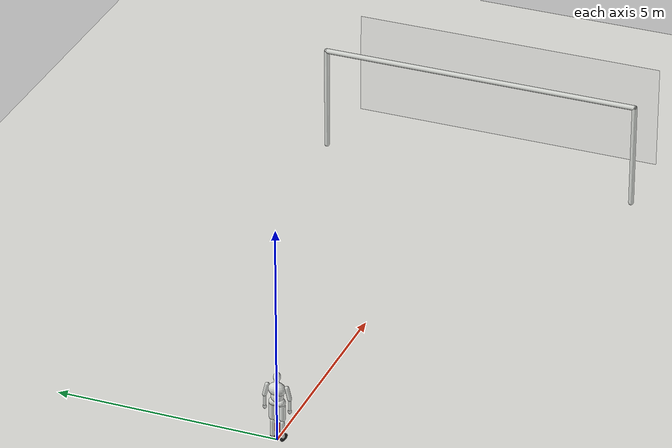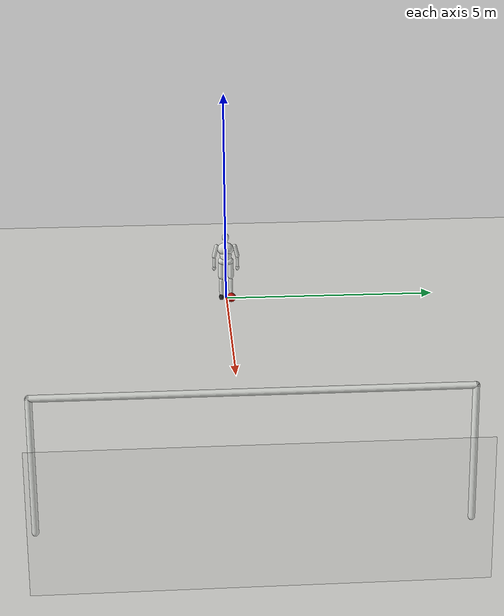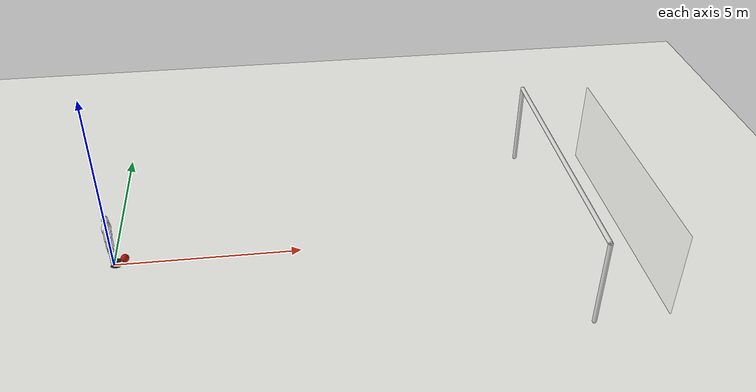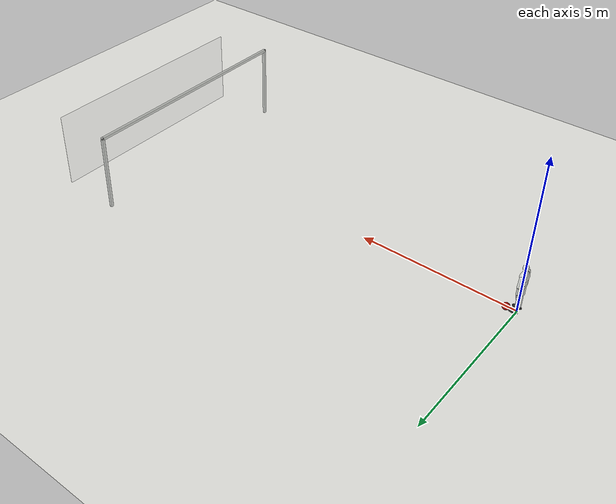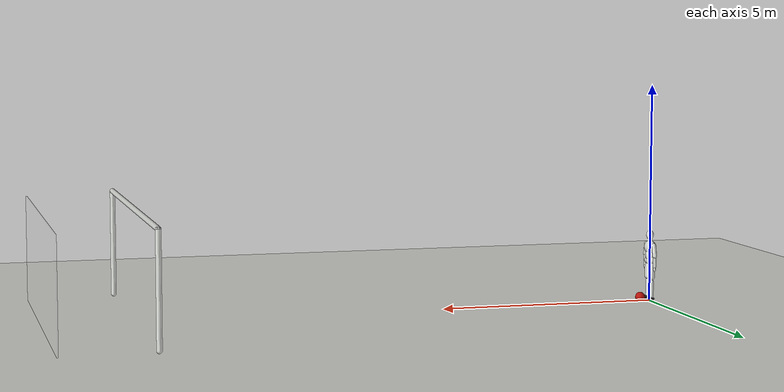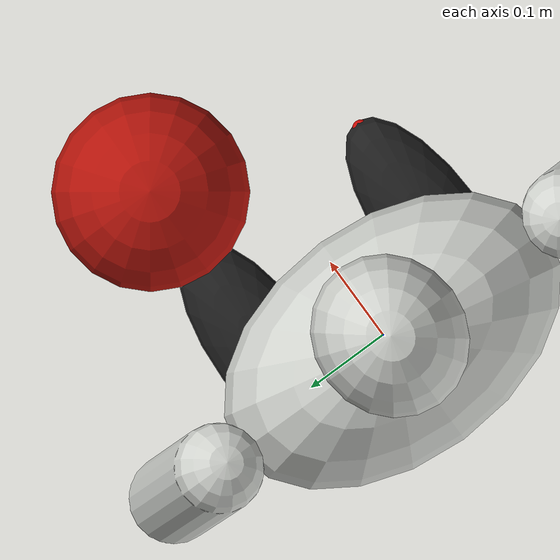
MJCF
<mujoco model="Atlas planted-support kick">
      <compiler angle="degree" autolimits="true"/>
      <option timestep="0.0001" gravity="0 0 -9.81" integrator="implicitfast" iterations="80" tolerance="1e-10" cone="elliptic"/>
      <size njmax="3000" nconmax="300"/>
      <default><joint damping=".3" armature=".03" limited="true"/>
        <geom condim="6" friction=".75 .006 .0002" margin=".001" solref=".0004 1" solimp=".995 .9999 .0002" rgba=".83 .84 .82 1"/>
        <site size=".01" rgba=".8 .05 .03 1"/>
      </default>
      <worldbody>
        <light pos="0 -3 6" dir="0 0 -1"/>
        <geom name="ground" type="plane" size="60 40 .1" rgba=".95 .95 .93 1" friction=".8 .002 .00005"/>
        <body name="pelvis" pos="0 0 .927"><freejoint name="root"/>
          <geom name="pelvis_geom" type="capsule" fromto="0 -.09 .015 0 .09 .015" size=".095" mass="10"/>
          <site name="pelvis"/>
          <geom name="abdomen" type="ellipsoid" pos="0 0 .16" size=".11 .14 .18" mass="10"/>
          <geom name="chest" type="ellipsoid" pos="0 0 .32" size=".125 .195 .16" mass="13"/>
          <geom name="neck" type="capsule" fromto="0 0 .44 0 0 .5" size=".045" mass=".8"/>
          <geom name="head" type="ellipsoid" pos=".008 0 .61" size=".085 .078 .11" mass="4.5"/>
          <site name="neck" pos="0 0 .47"/><site name="head" pos="0 0 .61"/>
          <body name="left_thigh" pos="0 0.115 0">
          <joint name="left_hip" axis="0 1 0" range="-100 70"/>
          <geom name="left_thigh_geom" type="capsule" fromto="0 0 -.06 0 0 -.37" size=".068" mass="8"/>
          <site name="left_hip" pos="0 0 0"/>
          <body name="left_shin" pos="0 0 -.43">
            <joint name="left_knee" axis="0 1 0" range="0 140"/>
            <geom name="left_shin_geom" type="capsule" fromto="0 0 -.045 0 0 -.38" size=".047" mass="3.5"/>
            <site name="left_knee"/>
            <body name="left_foot" pos="0 0 -.43">
              <joint name="left_ankle" axis="0 1 0" range="-50 50"/>
              <geom name="left_boot" type="ellipsoid" pos=".065 0 -.015" size=".145 .058 .052" mass="1" rgba=".12 .12 .12 1" friction=".8 .01 .001"/>
              <site name="left_ankle"/><site name="left_toe" pos=".2 0 -.015"/>
            </body>
          </body>
        </body><body name="left_upperarm" pos="0 0.22 .39">
          <joint name="left_shoulder" axis="0 1 0" range="-100 100"/>
          <geom name="left_upperarm_geom" type="capsule" fromto="0 0 0 0 0.06 -.25" size=".047" mass="2"/>
          <site name="left_shoulder"/>
          <body name="left_forearm" pos="0 0.06 -.28">
            <joint name="left_elbow" axis="0 1 0" range="-140 0"/>
            <geom name="left_forearm_geom" type="capsule" fromto="0 0 0 0 0 -.22" size=".034" mass="1.2"/>
            <site name="left_elbow"/><site name="left_wrist" pos="0 0 -.25"/>
            <geom name="left_hand" type="ellipsoid" pos="0 0 -.265" size=".025 .043 .065" mass=".4"/>
          </body>
        </body><body name="right_thigh" pos="0 -0.115 0">
          <joint name="right_hip" axis="0 1 0" range="-100 70"/>
          <geom name="right_thigh_geom" type="capsule" fromto="0 0 -.06 0 0 -.37" size=".068" mass="8"/>
          <site name="right_hip" pos="0 0 0"/>
          <body name="right_shin" pos="0 0 -.43">
            <joint name="right_knee" axis="0 1 0" range="0 140"/>
            <geom name="right_shin_geom" type="capsule" fromto="0 0 -.045 0 0 -.38" size=".047" mass="3.5"/>
            <site name="right_knee"/>
            <body name="right_foot" pos="0 0 -.43">
              <joint name="right_ankle" axis="0 1 0" range="-50 50"/>
              <geom name="right_boot" type="ellipsoid" pos=".065 0 -.015" size=".145 .058 .052" mass="1" rgba=".12 .12 .12 1" friction=".8 .01 .001"/>
              <site name="right_ankle"/><site name="right_toe" pos=".2 0 -.015"/>
            </body>
          </body>
        </body><body name="right_upperarm" pos="0 -0.22 .39">
          <joint name="right_shoulder" axis="0 1 0" range="-100 100"/>
          <geom name="right_upperarm_geom" type="capsule" fromto="0 0 0 0 -0.06 -.25" size=".047" mass="2"/>
          <site name="right_shoulder"/>
          <body name="right_forearm" pos="0 -0.06 -.28">
            <joint name="right_elbow" axis="0 1 0" range="-140 0"/>
            <geom name="right_forearm_geom" type="capsule" fromto="0 0 0 0 0 -.22" size=".034" mass="1.2"/>
            <site name="right_elbow"/><site name="right_wrist" pos="0 0 -.25"/>
            <geom name="right_hand" type="ellipsoid" pos="0 0 -.265" size=".025 .043 .065" mass=".4"/>
          </body>
        </body>
        </body>
        <body name="ball" pos="0.28 .115 0.112"><freejoint name="ball_free"/>
          <geom name="ball" type="sphere" size=".11" mass=".43" rgba=".72 .08 .045 1" solref=".0004 .8" friction=".55 .001 .00002"/>
          <site name="ball_center"/>
        </body>
        <geom name="post_left" type="capsule" fromto="12 -3.72 .06 12 -3.72 2.50" size=".06"/>
        <geom name="post_right" type="capsule" fromto="12 3.72 .06 12 3.72 2.50" size=".06"/>
        <geom name="crossbar" type="capsule" fromto="12 -3.72 2.50 12 3.72 2.50" size=".06"/>
        <geom name="net_back" type="box" pos="14 0 1.22" size=".015 3.66 1.22" rgba=".8 .8 .8 .15" solref=".0004 1"/>
      </worldbody>
      <equality><weld name="planted_support" body1="right_foot" solref=".003 1"/></equality>
      <actuator><position name="left_hip" joint="left_hip" kp="1400" kv="65" forcerange="-500 500"/><position name="left_knee" joint="left_knee" kp="1100" kv="45" forcerange="-350 350"/><position name="left_ankle" joint="left_ankle" kp="350" kv="20" forcerange="-150 150"/><position name="left_shoulder" joint="left_shoulder" kp="200" kv="16" forcerange="-100 100"/><position name="left_elbow" joint="left_elbow" kp="150" kv="12" forcerange="-70 70"/><position name="right_hip" joint="right_hip" kp="6000" kv="250" forcerange="-600 600"/><position name="right_knee" joint="right_knee" kp="5000" kv="170" forcerange="-500 500"/><position name="right_ankle" joint="right_ankle" kp="3500" kv="180" forcerange="-250 250"/><position name="right_shoulder" joint="right_shoulder" kp="200" kv="16" forcerange="-100 100"/><position name="right_elbow" joint="right_elbow" kp="150" kv="12" forcerange="-70 70"/></actuator>
    </mujoco>
